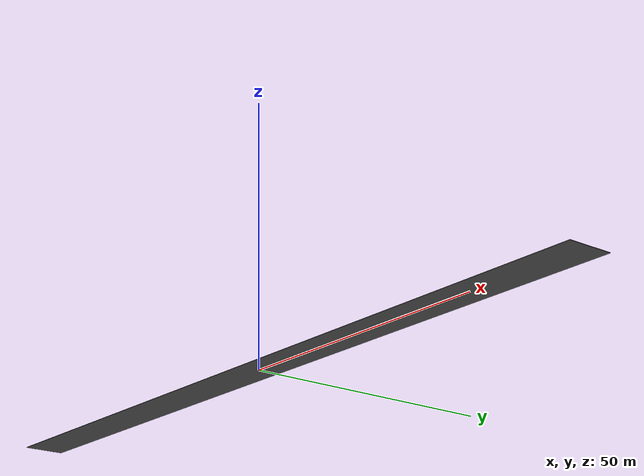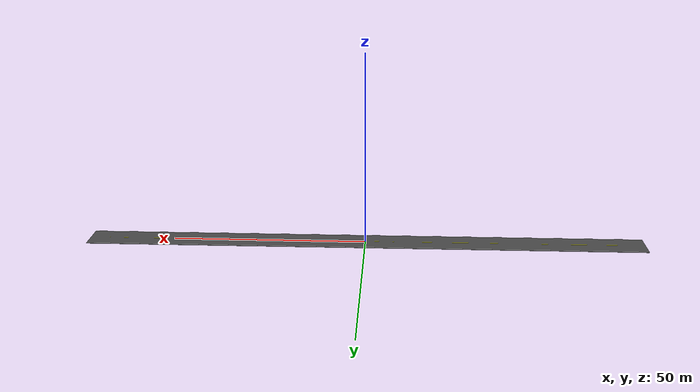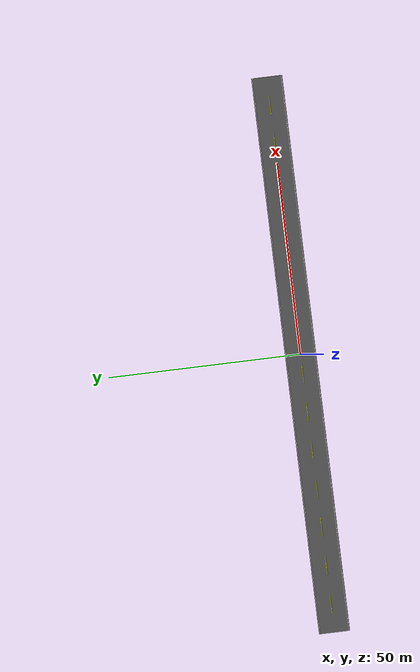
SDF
<?xml version="1.0" ?>
<sdf version="1.6">
  <model name="car_road">
    <static>true</static>
    <link name="road_link">

      <!-- ================= 메인 도로 ================= -->
      <visual name="road_surface">
        <pose>0 0 0.05 0 0 0</pose>
        <geometry>
          <box>
            <size>145 8 0.1</size>
          </box>
        </geometry>
        <material>
          <ambient>0.2 0.2 0.2 1</ambient>
          <diffuse>0.3 0.3 0.3 1</diffuse>
        </material>
      </visual>

      <collision name="road_collision">
        <pose>0 0 0.05 0 0 0</pose>
        <geometry>
          <box>
            <size>145 8 0.1</size>
          </box>
        </geometry>
      </collision>

      <!-- ================= 중앙선 (Center Line) ================= -->
      <visual name="center_line_1">
        <pose>-65 0 0.11 0 0 0</pose>
        <geometry>
          <box>
            <size>5 0.15 0.01</size>
          </box>
        </geometry>
        <material>
          <ambient>1 1 0 1</ambient>
          <diffuse>1 1 0 1</diffuse>
        </material>
      </visual>

      <visual name="center_line_2">
        <pose>-55 0 0.11 0 0 0</pose>
        <geometry>
          <box>
            <size>5 0.15 0.01</size>
          </box>
        </geometry>
        <material>
          <ambient>1 1 0 1</ambient>
          <diffuse>1 1 0 1</diffuse>
        </material>
      </visual>

      <visual name="center_line_3">
        <pose>-45 0 0.11 0 0 0</pose>
        <geometry>
          <box>
            <size>5 0.15 0.01</size>
          </box>
        </geometry>
        <material>
          <ambient>1 1 0 1</ambient>
          <diffuse>1 1 0 1</diffuse>
        </material>
      </visual>

      <visual name="center_line_4">
        <pose>-35 0 0.11 0 0 0</pose>
        <geometry>
          <box>
            <size>5 0.15 0.01</size>
          </box>
        </geometry>
        <material>
          <ambient>1 1 0 1</ambient>
          <diffuse>1 1 0 1</diffuse>
        </material>
      </visual>

      <visual name="center_line_5">
        <pose>-25 0 0.11 0 0 0</pose>
        <geometry>
          <box>
            <size>5 0.15 0.01</size>
          </box>
        </geometry>
        <material>
          <ambient>1 1 0 1</ambient>
          <diffuse>1 1 0 1</diffuse>
        </material>
      </visual>

      <visual name="center_line_6">
        <pose>-15 0 0.11 0 0 0</pose>
        <geometry>
          <box>
            <size>5 0.15 0.01</size>
          </box>
        </geometry>
        <material>
          <ambient>1 1 0 1</ambient>
          <diffuse>1 1 0 1</diffuse>
        </material>
      </visual>

      <visual name="center_line_7">
        <pose>-5 0 0.11 0 0 0</pose>
        <geometry>
          <box>
            <size>5 0.15 0.01</size>
          </box>
        </geometry>
        <material>
          <ambient>1 1 0 1</ambient>
          <diffuse>1 1 0 1</diffuse>
        </material>
      </visual>

      <visual name="center_line_8">
        <pose>5 0 0.11 0 0 0</pose>
        <geometry>
          <box>
            <size>5 0.15 0.01</size>
          </box>
        </geometry>
        <material>
          <ambient>1 1 0 1</ambient>
          <diffuse>1 1 0 1</diffuse>
        </material>
      </visual>

      <visual name="center_line_9">
        <pose>15 0 0.11 0 0 0</pose>
        <geometry>
          <box>
            <size>5 0.15 0.01</size>
          </box>
        </geometry>
        <material>
          <ambient>1 1 0 1</ambient>
          <diffuse>1 1 0 1</diffuse>
        </material>
      </visual>

      <visual name="center_line_10">
        <pose>25 0 0.11 0 0 0</pose>
        <geometry>
          <box>
            <size>5 0.15 0.01</size>
          </box>
        </geometry>
        <material>
          <ambient>1 1 0 1</ambient>
          <diffuse>1 1 0 1</diffuse>
        </material>
      </visual>

      <visual name="center_line_11">
        <pose>35 0 0.11 0 0 0</pose>
        <geometry>
          <box>
            <size>5 0.15 0.01</size>
          </box>
        </geometry>
        <material>
          <ambient>1 1 0 1</ambient>
          <diffuse>1 1 0 1</diffuse>
        </material>
      </visual>

      <visual name="center_line_12">
        <pose>45 0 0.11 0 0 0</pose>
        <geometry>
          <box>
            <size>5 0.15 0.01</size>
          </box>
        </geometry>
        <material>
          <ambient>1 1 0 1</ambient>
          <diffuse>1 1 0 1</diffuse>
        </material>
      </visual>

      <visual name="center_line_13">
        <pose>55 0 0.11 0 0 0</pose>
        <geometry>
          <box>
            <size>5 0.15 0.01</size>
          </box>
        </geometry>
        <material>
          <ambient>1 1 0 1</ambient>
          <diffuse>1 1 0 1</diffuse>
        </material>
      </visual>

      <visual name="center_line_14">
        <pose>65 0 0.11 0 0 0</pose>
        <geometry>
          <box>
            <size>5 0.15 0.01</size>
          </box>
        </geometry>
        <material>
          <ambient>1 1 0 1</ambient>
          <diffuse>1 1 0 1</diffuse>
        </material>
      </visual>

      <!-- ================= 왼쪽 차선 (Left Lane Line) ================= -->
      <visual name="left_lane_line">
        <pose>0 -3.8 0.11 0 0 0</pose>
        <geometry>
          <box>
            <size>145 0.15 0.01</size>
          </box>
        </geometry>
        <material>
          <ambient>1 1 1 1</ambient>
          <diffuse>1 1 1 1</diffuse>
        </material>
      </visual>

      <!-- ================= 오른쪽 차선 (Right Lane Line) ================= -->
      <visual name="right_lane_line">
        <pose>0 3.8 0.11 0 0 0</pose>
        <geometry>
          <box>
            <size>145 0.15 0.01</size>
          </box>
        </geometry>
        <material>
          <ambient>1 1 1 1</ambient>
          <diffuse>1 1 1 1</diffuse>
        </material>
      </visual>

    </link>
  </model>
</sdf>
